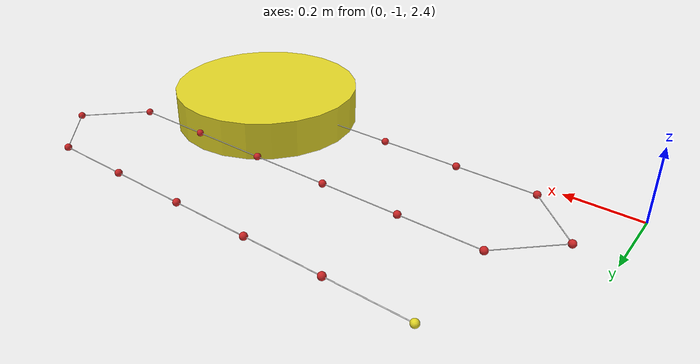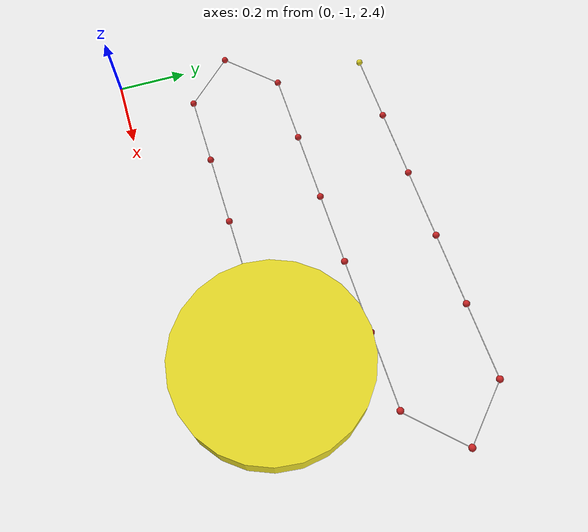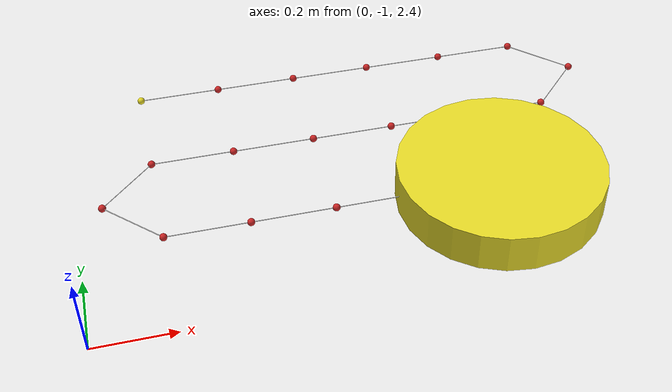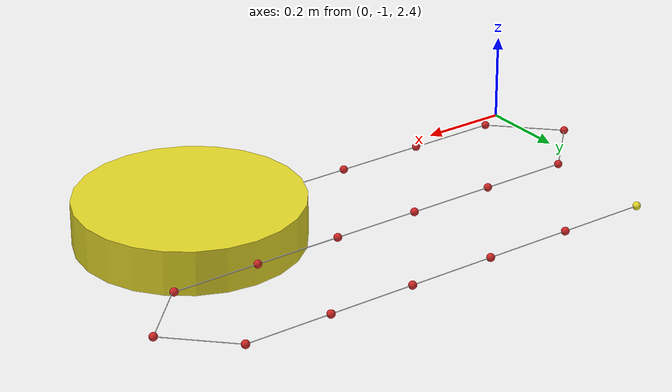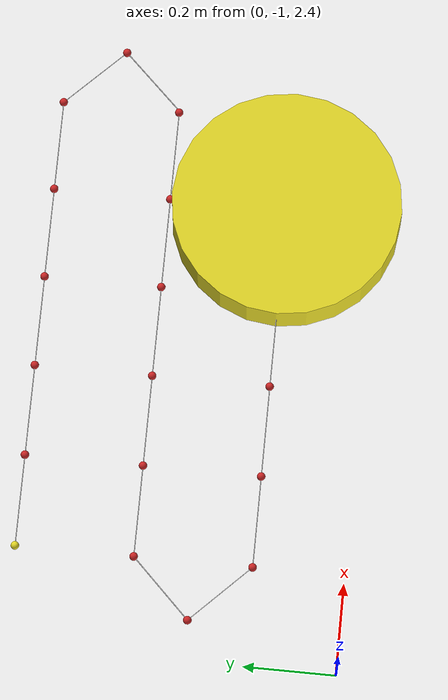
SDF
<sdf version="1.7">
 <world name="default">
  <light name="sun" type="directional">
   <pose>0 0 10 0 -0 0</pose>
   <diffuse>0.8 0.8 0.8 1</diffuse>
   <specular>0.2 0.2 0.2 1</specular>
   <attenuation>
    <range>1000</range>
    <constant>0.9</constant>
    <linear>0.01</linear>
    <quadratic>0.001</quadratic>
   </attenuation>
   <direction>-0.5 0.1 -0.9</direction>
   <spot><inner_angle>0</inner_angle><outer_angle>0</outer_angle><falloff>0</falloff></spot>
  </light>
  <model name="ground_plane">
   <static>1</static>
   <link name="link">
    <collision name="collision">
     <geometry><plane><normal>0 0 1</normal><size>100 100</size></plane></geometry>
     <surface><friction><ode><mu>100</mu><mu2>50</mu2></ode></friction></surface>
    </collision>
    <visual name="visual">
     <cast_shadows>0</cast_shadows>
     <geometry><plane><normal>0 0 1</normal><size>100 100</size></plane></geometry>
     <material>
      <script><uri>file://media/materials/scripts/gazebo.material</uri><name>Gazebo/Grey</name></script>
     </material>
    </visual>
   </link>
  </model>
  <gravity>0 0 -9.8</gravity>
  <magnetic_field>6e-06 2.3e-05 -4.2e-05</magnetic_field>
  <atmosphere type="adiabatic"/>
  <physics type="ode">
   <max_step_size>0.001</max_step_size>
   <real_time_factor>1</real_time_factor>
   <real_time_update_rate>1000</real_time_update_rate>
  </physics>
  <scene><ambient>0.4 0.4 0.4 1</ambient><background>0.7 0.7 0.7 1</background><shadows>1</shadows></scene>
  <spherical_coordinates>
   <surface_model>EARTH_WGS84</surface_model>
   <latitude_deg>0</latitude_deg>
   <longitude_deg>0</longitude_deg>
   <elevation>0</elevation>
   <heading_deg>0</heading_deg>
  </spherical_coordinates>
  <model name="table_and_tether">
   <link name="tether_connection_link">
    <gravity>0</gravity>
    <pose>0.9 -0.508 2.5 0 -0 0</pose>
    <visual name="visual">
     <material>
      <script><name>Gazebo/Yellow</name><uri>file://media/materials/scripts/gazebo.material</uri></script>
     </material>
     <geometry><cylinder><radius>0.25</radius><length>0.1</length></cylinder></geometry>
    </visual>
    <inertial>
     <inertia><ixx>1</ixx><ixy>0</ixy><ixz>0</ixz><iyy>1</iyy><iyz>0</iyz><izz>1</izz></inertia>
     <mass>1</mass>
    </inertial>
   </link>
   <joint name="joint_table" type="fixed"><child>tether_connection_link</child><parent>world</parent></joint>
   <link name="link_00">
    <pose>0.1 0 2.5 0 -0 0</pose>
    <inertial>
     <mass>0.009</mass>
     <pose>0.1 0 0 0 -0 0</pose>
     <inertia><ixx>0.01</ixx><ixy>0</ixy><ixz>0</ixz><iyy>0.01</iyy><iyz>0</iyz><izz>0.01</izz></inertia>
    </inertial>
    <visual name="sphere">
     <geometry><sphere><radius>0.009</radius></sphere></geometry>
     <material>
      <script><name>Gazebo/Yellow</name><uri>file://media/materials/scripts/gazebo.material</uri></script>
     </material>
    </visual>
   </link>
   <link name="link_01">
    <pose>0.1 0 2.5 0 -0 0</pose>
    <inertial>
     <mass>0.009</mass>
     <pose>0.1 0 0 0 -0 0</pose>
     <inertia><ixx>0.01</ixx><ixy>0</ixy><ixz>0</ixz><iyy>0.01</iyy><iyz>0</iyz><izz>0.01</izz></inertia>
    </inertial>
    <collision name="collision">
     <pose>0.1 0 0 0 1.57079 0</pose>
     <geometry><cylinder><length>0.2</length><radius>0.001</radius></cylinder></geometry>
     <surface>
      <contact><ode><min_depth>5e-05</min_depth></ode></contact>
      <friction><ode><mu>1</mu><mu2>1</mu2></ode></friction>
     </surface>
    </collision>
    <visual name="visual">
     <pose>0.1 0 0 0 1.57079 0</pose>
     <geometry><cylinder><length>0.2</length><radius>0.001</radius></cylinder></geometry>
     <material>
      <script><name>Gazebo/White</name><uri>file://media/materials/scripts/gazebo.material</uri></script>
     </material>
    </visual>
   </link>
   <link name="link_02">
    <pose>0.3 0 2.5 0 -0 0</pose>
    <inertial>
     <mass>0.009</mass>
     <pose>0.1 0 0 0 -0 0</pose>
     <inertia><ixx>0.01</ixx><ixy>0</ixy><ixz>0</ixz><iyy>0.01</iyy><iyz>0</iyz><izz>0.01</izz></inertia>
    </inertial>
    <collision name="collision">
     <pose>0.1 0 0 0 1.57079 0</pose>
     <geometry><cylinder><length>0.2</length><radius>0.001</radius></cylinder></geometry>
     <surface>
      <contact><ode><min_depth>5e-05</min_depth></ode></contact>
      <friction><ode><mu>1</mu><mu2>1</mu2></ode></friction>
     </surface>
    </collision>
    <visual name="visual">
     <pose>0.1 0 0 0 1.57079 0</pose>
     <geometry><cylinder><length>0.2</length><radius>0.001</radius></cylinder></geometry>
     <material>
      <script><name>Gazebo/White</name><uri>file://media/materials/scripts/gazebo.material</uri></script>
     </material>
    </visual>
    <visual name="sphere">
     <geometry><sphere><radius>0.009</radius></sphere></geometry>
     <material>
      <script><name>Gazebo/Red</name><uri>file://media/materials/scripts/gazebo.material</uri></script>
     </material>
    </visual>
   </link>
   <link name="link_03">
    <pose>0.5 0 2.5 0 -0 0</pose>
    <inertial>
     <mass>0.009</mass>
     <pose>0.1 0 0 0 -0 0</pose>
     <inertia><ixx>0.01</ixx><ixy>0</ixy><ixz>0</ixz><iyy>0.01</iyy><iyz>0</iyz><izz>0.01</izz></inertia>
    </inertial>
    <collision name="collision">
     <pose>0.1 0 0 0 1.57079 0</pose>
     <geometry><cylinder><length>0.2</length><radius>0.001</radius></cylinder></geometry>
     <surface>
      <contact><ode><min_depth>5e-05</min_depth></ode></contact>
      <friction><ode><mu>1</mu><mu2>1</mu2></ode></friction>
     </surface>
    </collision>
    <visual name="visual">
     <pose>0.1 0 0 0 1.57079 0</pose>
     <geometry><cylinder><length>0.2</length><radius>0.001</radius></cylinder></geometry>
     <material>
      <script><name>Gazebo/White</name><uri>file://media/materials/scripts/gazebo.material</uri></script>
     </material>
    </visual>
    <visual name="sphere">
     <geometry><sphere><radius>0.009</radius></sphere></geometry>
     <material>
      <script><name>Gazebo/Red</name><uri>file://media/materials/scripts/gazebo.material</uri></script>
     </material>
    </visual>
   </link>
   <link name="link_04">
    <pose>0.7 0 2.5 0 -0 0</pose>
    <inertial>
     <mass>0.009</mass>
     <pose>0.1 0 0 0 -0 0</pose>
     <inertia><ixx>0.01</ixx><ixy>0</ixy><ixz>0</ixz><iyy>0.01</iyy><iyz>0</iyz><izz>0.01</izz></inertia>
    </inertial>
    <collision name="collision">
     <pose>0.1 0 0 0 1.57079 0</pose>
     <geometry><cylinder><length>0.2</length><radius>0.001</radius></cylinder></geometry>
     <surface>
      <contact><ode><min_depth>5e-05</min_depth></ode></contact>
      <friction><ode><mu>1</mu><mu2>1</mu2></ode></friction>
     </surface>
    </collision>
    <visual name="visual">
     <pose>0.1 0 0 0 1.57079 0</pose>
     <geometry><cylinder><length>0.2</length><radius>0.001</radius></cylinder></geometry>
     <material>
      <script><name>Gazebo/White</name><uri>file://media/materials/scripts/gazebo.material</uri></script>
     </material>
    </visual>
    <visual name="sphere">
     <geometry><sphere><radius>0.009</radius></sphere></geometry>
     <material>
      <script><name>Gazebo/Red</name><uri>file://media/materials/scripts/gazebo.material</uri></script>
     </material>
    </visual>
   </link>
   <link name="link_05">
    <pose>0.9 0 2.5 0 -0 0</pose>
    <inertial>
     <mass>0.009</mass>
     <pose>0.1 0 0 0 -0 0</pose>
     <inertia><ixx>0.01</ixx><ixy>0</ixy><ixz>0</ixz><iyy>0.01</iyy><iyz>0</iyz><izz>0.01</izz></inertia>
    </inertial>
    <collision name="collision">
     <pose>0.1 0 0 0 1.57079 0</pose>
     <geometry><cylinder><length>0.2</length><radius>0.001</radius></cylinder></geometry>
     <surface>
      <contact><ode><min_depth>5e-05</min_depth></ode></contact>
      <friction><ode><mu>1</mu><mu2>1</mu2></ode></friction>
     </surface>
    </collision>
    <visual name="visual">
     <pose>0.1 0 0 0 1.57079 0</pose>
     <geometry><cylinder><length>0.2</length><radius>0.001</radius></cylinder></geometry>
     <material>
      <script><name>Gazebo/White</name><uri>file://media/materials/scripts/gazebo.material</uri></script>
     </material>
    </visual>
    <visual name="sphere">
     <geometry><sphere><radius>0.009</radius></sphere></geometry>
     <material>
      <script><name>Gazebo/Red</name><uri>file://media/materials/scripts/gazebo.material</uri></script>
     </material>
    </visual>
   </link>
   <link name="link_06">
    <pose>1.1 0 2.5 0 0 -0.785</pose>
    <inertial>
     <mass>0.009</mass>
     <pose>0.0875 0 0 0 -0 0</pose>
     <inertia><ixx>0.01</ixx><ixy>0</ixy><ixz>0</ixz><iyy>0.01</iyy><iyz>0</iyz><izz>0.01</izz></inertia>
    </inertial>
    <collision name="collision">
     <pose>0.0875 0 0 0 1.57079 0</pose>
     <geometry><cylinder><length>0.175</length><radius>0.001</radius></cylinder></geometry>
     <surface>
      <contact><ode><min_depth>5e-05</min_depth></ode></contact>
      <friction><ode><mu>1</mu><mu2>1</mu2></ode></friction>
     </surface>
    </collision>
    <visual name="visual">
     <pose>0.0875 0 0 0 1.57079 0</pose>
     <geometry><cylinder><length>0.175</length><radius>0.001</radius></cylinder></geometry>
     <material>
      <script><name>Gazebo/White</name><uri>file://media/materials/scripts/gazebo.material</uri></script>
     </material>
    </visual>
    <visual name="sphere">
     <geometry><sphere><radius>0.009</radius></sphere></geometry>
     <material>
      <script><name>Gazebo/Red</name><uri>file://media/materials/scripts/gazebo.material</uri></script>
     </material>
    </visual>
   </link>
   <link name="link_07">
    <pose>1.227 -0.127 2.5 0 0 -2.3415</pose>
    <inertial>
     <mass>0.009</mass>
     <pose>0.0875 0 0 0 -0 0</pose>
     <inertia><ixx>0.01</ixx><ixy>0</ixy><ixz>0</ixz><iyy>0.01</iyy><iyz>0</iyz><izz>0.01</izz></inertia>
    </inertial>
    <collision name="collision">
     <pose>0.0875 0 0 0 1.57079 0</pose>
     <geometry><cylinder><length>0.175</length><radius>0.001</radius></cylinder></geometry>
     <surface>
      <contact><ode><min_depth>5e-05</min_depth></ode></contact>
      <friction><ode><mu>1</mu><mu2>1</mu2></ode></friction>
     </surface>
    </collision>
    <visual name="visual">
     <pose>0.0875 0 0 0 1.57079 0</pose>
     <geometry><cylinder><length>0.175</length><radius>0.001</radius></cylinder></geometry>
     <material>
      <script><name>Gazebo/White</name><uri>file://media/materials/scripts/gazebo.material</uri></script>
     </material>
    </visual>
    <visual name="sphere">
     <geometry><sphere><radius>0.009</radius></sphere></geometry>
     <material>
      <script><name>Gazebo/Red</name><uri>file://media/materials/scripts/gazebo.material</uri></script>
     </material>
    </visual>
   </link>
   <link name="link_08">
    <pose>1.1 -0.254 2.5 0 0 -3.1415</pose>
    <inertial>
     <mass>0.009</mass>
     <pose>0.1 0 0 0 -0 0</pose>
     <inertia><ixx>0.01</ixx><ixy>0</ixy><ixz>0</ixz><iyy>0.01</iyy><iyz>0</iyz><izz>0.01</izz></inertia>
    </inertial>
    <collision name="collision">
     <pose>0.1 0 0 0 1.57079 0</pose>
     <geometry><cylinder><length>0.2</length><radius>0.001</radius></cylinder></geometry>
     <surface>
      <contact><ode><min_depth>5e-05</min_depth></ode></contact>
      <friction><ode><mu>1</mu><mu2>1</mu2></ode></friction>
     </surface>
    </collision>
    <visual name="visual">
     <pose>0.1 0 0 0 1.57079 0</pose>
     <geometry><cylinder><length>0.2</length><radius>0.001</radius></cylinder></geometry>
     <material>
      <script><name>Gazebo/White</name><uri>file://media/materials/scripts/gazebo.material</uri></script>
     </material>
    </visual>
    <visual name="sphere">
     <geometry><sphere><radius>0.009</radius></sphere></geometry>
     <material>
      <script><name>Gazebo/Red</name><uri>file://media/materials/scripts/gazebo.material</uri></script>
     </material>
    </visual>
   </link>
   <link name="link_09">
    <pose>0.9 -0.254 2.5 0 0 -3.1415</pose>
    <inertial>
     <mass>0.009</mass>
     <pose>0.1 0 0 0 -0 0</pose>
     <inertia><ixx>0.01</ixx><ixy>0</ixy><ixz>0</ixz><iyy>0.01</iyy><iyz>0</iyz><izz>0.01</izz></inertia>
    </inertial>
    <collision name="collision">
     <pose>0.1 0 0 0 1.57079 0</pose>
     <geometry><cylinder><length>0.2</length><radius>0.001</radius></cylinder></geometry>
     <surface>
      <contact><ode><min_depth>5e-05</min_depth></ode></contact>
      <friction><ode><mu>1</mu><mu2>1</mu2></ode></friction>
     </surface>
    </collision>
    <visual name="visual">
     <pose>0.1 0 0 0 1.57079 0</pose>
     <geometry><cylinder><length>0.2</length><radius>0.001</radius></cylinder></geometry>
     <material>
      <script><name>Gazebo/White</name><uri>file://media/materials/scripts/gazebo.material</uri></script>
     </material>
    </visual>
    <visual name="sphere">
     <geometry><sphere><radius>0.009</radius></sphere></geometry>
     <material>
      <script><name>Gazebo/Red</name><uri>file://media/materials/scripts/gazebo.material</uri></script>
     </material>
    </visual>
   </link>
   <link name="link_10">
    <pose>0.7 -0.254 2.5 0 0 -3.1415</pose>
    <inertial>
     <mass>0.009</mass>
     <pose>0.1 0 0 0 -0 0</pose>
     <inertia><ixx>0.01</ixx><ixy>0</ixy><ixz>0</ixz><iyy>0.01</iyy><iyz>0</iyz><izz>0.01</izz></inertia>
    </inertial>
    <collision name="collision">
     <pose>0.1 0 0 0 1.57079 0</pose>
     <geometry><cylinder><length>0.2</length><radius>0.001</radius></cylinder></geometry>
     <surface>
      <contact><ode><min_depth>5e-05</min_depth></ode></contact>
      <friction><ode><mu>1</mu><mu2>1</mu2></ode></friction>
     </surface>
    </collision>
    <visual name="visual">
     <pose>0.1 0 0 0 1.57079 0</pose>
     <geometry><cylinder><length>0.2</length><radius>0.001</radius></cylinder></geometry>
     <material>
      <script><name>Gazebo/White</name><uri>file://media/materials/scripts/gazebo.material</uri></script>
     </material>
    </visual>
    <visual name="sphere">
     <geometry><sphere><radius>0.009</radius></sphere></geometry>
     <material>
      <script><name>Gazebo/Red</name><uri>file://media/materials/scripts/gazebo.material</uri></script>
     </material>
    </visual>
   </link>
   <link name="link_11">
    <pose>0.5 -0.254 2.5 0 0 -3.1415</pose>
    <inertial>
     <mass>0.009</mass>
     <pose>0.1 0 0 0 -0 0</pose>
     <inertia><ixx>0.01</ixx><ixy>0</ixy><ixz>0</ixz><iyy>0.01</iyy><iyz>0</iyz><izz>0.01</izz></inertia>
    </inertial>
    <collision name="collision">
     <pose>0.1 0 0 0 1.57079 0</pose>
     <geometry><cylinder><length>0.2</length><radius>0.001</radius></cylinder></geometry>
     <surface>
      <contact><ode><min_depth>5e-05</min_depth></ode></contact>
      <friction><ode><mu>1</mu><mu2>1</mu2></ode></friction>
     </surface>
    </collision>
    <visual name="visual">
     <pose>0.1 0 0 0 1.57079 0</pose>
     <geometry><cylinder><length>0.2</length><radius>0.001</radius></cylinder></geometry>
     <material>
      <script><name>Gazebo/White</name><uri>file://media/materials/scripts/gazebo.material</uri></script>
     </material>
    </visual>
    <visual name="sphere">
     <geometry><sphere><radius>0.009</radius></sphere></geometry>
     <material>
      <script><name>Gazebo/Red</name><uri>file://media/materials/scripts/gazebo.material</uri></script>
     </material>
    </visual>
   </link>
   <link name="link_12">
    <pose>0.3 -0.254 2.5 0 0 -3.1415</pose>
    <inertial>
     <mass>0.009</mass>
     <pose>0.1 0 0 0 -0 0</pose>
     <inertia><ixx>0.01</ixx><ixy>0</ixy><ixz>0</ixz><iyy>0.01</iyy><iyz>0</iyz><izz>0.01</izz></inertia>
    </inertial>
    <collision name="collision">
     <pose>0.1 0 0 0 1.57079 0</pose>
     <geometry><cylinder><length>0.2</length><radius>0.001</radius></cylinder></geometry>
     <surface>
      <contact><ode><min_depth>5e-05</min_depth></ode></contact>
      <friction><ode><mu>1</mu><mu2>1</mu2></ode></friction>
     </surface>
    </collision>
    <visual name="visual">
     <pose>0.1 0 0 0 1.57079 0</pose>
     <geometry><cylinder><length>0.2</length><radius>0.001</radius></cylinder></geometry>
     <material>
      <script><name>Gazebo/White</name><uri>file://media/materials/scripts/gazebo.material</uri></script>
     </material>
    </visual>
    <visual name="sphere">
     <geometry><sphere><radius>0.009</radius></sphere></geometry>
     <material>
      <script><name>Gazebo/Red</name><uri>file://media/materials/scripts/gazebo.material</uri></script>
     </material>
    </visual>
   </link>
   <link name="link_13">
    <pose>0.1 -0.254 2.5 0 0 -2.356</pose>
    <inertial>
     <mass>0.009</mass>
     <pose>0.0875 0 0 0 -0 0</pose>
     <inertia><ixx>0.01</ixx><ixy>0</ixy><ixz>0</ixz><iyy>0.01</iyy><iyz>0</iyz><izz>0.01</izz></inertia>
    </inertial>
    <collision name="collision">
     <pose>0.0875 0 0 0 1.57079 0</pose>
     <geometry><cylinder><length>0.175</length><radius>0.001</radius></cylinder></geometry>
     <surface>
      <contact><ode><min_depth>5e-05</min_depth></ode></contact>
      <friction><ode><mu>1</mu><mu2>1</mu2></ode></friction>
     </surface>
    </collision>
    <visual name="visual">
     <pose>0.0875 0 0 0 1.57079 0</pose>
     <geometry><cylinder><length>0.175</length><radius>0.001</radius></cylinder></geometry>
     <material>
      <script><name>Gazebo/White</name><uri>file://media/materials/scripts/gazebo.material</uri></script>
     </material>
    </visual>
    <visual name="sphere">
     <geometry><sphere><radius>0.009</radius></sphere></geometry>
     <material>
      <script><name>Gazebo/Red</name><uri>file://media/materials/scripts/gazebo.material</uri></script>
     </material>
    </visual>
   </link>
   <link name="link_14">
    <pose>-0.027 -0.381 2.5 0 0 -0.785</pose>
    <inertial>
     <mass>0.009</mass>
     <pose>0.0875 0 0 0 -0 0</pose>
     <inertia><ixx>0.01</ixx><ixy>0</ixy><ixz>0</ixz><iyy>0.01</iyy><iyz>0</iyz><izz>0.01</izz></inertia>
    </inertial>
    <collision name="collision">
     <pose>0.0875 0 0 0 1.57079 0</pose>
     <geometry><cylinder><length>0.175</length><radius>0.001</radius></cylinder></geometry>
     <surface>
      <contact><ode><min_depth>5e-05</min_depth></ode></contact>
      <friction><ode><mu>1</mu><mu2>1</mu2></ode></friction>
     </surface>
    </collision>
    <visual name="visual">
     <pose>0.0875 0 0 0 1.57079 0</pose>
     <geometry><cylinder><length>0.175</length><radius>0.001</radius></cylinder></geometry>
     <material>
      <script><name>Gazebo/White</name><uri>file://media/materials/scripts/gazebo.material</uri></script>
     </material>
    </visual>
    <visual name="sphere">
     <geometry><sphere><radius>0.009</radius></sphere></geometry>
     <material>
      <script><name>Gazebo/Red</name><uri>file://media/materials/scripts/gazebo.material</uri></script>
     </material>
    </visual>
   </link>
   <link name="link_15">
    <pose>0.1 -0.508 2.5 0 -0 0</pose>
    <inertial>
     <mass>0.009</mass>
     <pose>0.1 0 0 0 -0 0</pose>
     <inertia><ixx>0.01</ixx><ixy>0</ixy><ixz>0</ixz><iyy>0.01</iyy><iyz>0</iyz><izz>0.01</izz></inertia>
    </inertial>
    <collision name="collision">
     <pose>0.1 0 0 0 1.57079 0</pose>
     <geometry><cylinder><length>0.2</length><radius>0.001</radius></cylinder></geometry>
     <surface>
      <contact><ode><min_depth>5e-05</min_depth></ode></contact>
      <friction><ode><mu>1</mu><mu2>1</mu2></ode></friction>
     </surface>
    </collision>
    <visual name="visual">
     <pose>0.1 0 0 0 1.57079 0</pose>
     <geometry><cylinder><length>0.2</length><radius>0.001</radius></cylinder></geometry>
     <material>
      <script><name>Gazebo/White</name><uri>file://media/materials/scripts/gazebo.material</uri></script>
     </material>
    </visual>
    <visual name="sphere">
     <geometry><sphere><radius>0.009</radius></sphere></geometry>
     <material>
      <script><name>Gazebo/Red</name><uri>file://media/materials/scripts/gazebo.material</uri></script>
     </material>
    </visual>
   </link>
   <link name="link_16">
    <pose>0.3 -0.508 2.5 0 -0 0</pose>
    <inertial>
     <mass>0.009</mass>
     <pose>0.1 0 0 0 -0 0</pose>
     <inertia><ixx>0.01</ixx><ixy>0</ixy><ixz>0</ixz><iyy>0.01</iyy><iyz>0</iyz><izz>0.01</izz></inertia>
    </inertial>
    <collision name="collision">
     <pose>0.1 0 0 0 1.57079 0</pose>
     <geometry><cylinder><length>0.2</length><radius>0.001</radius></cylinder></geometry>
     <surface>
      <contact><ode><min_depth>5e-05</min_depth></ode></contact>
      <friction><ode><mu>1</mu><mu2>1</mu2></ode></friction>
     </surface>
    </collision>
    <visual name="visual">
     <pose>0.1 0 0 0 1.57079 0</pose>
     <geometry><cylinder><length>0.2</length><radius>0.001</radius></cylinder></geometry>
     <material>
      <script><name>Gazebo/White</name><uri>file://media/materials/scripts/gazebo.material</uri></script>
     </material>
    </visual>
    <visual name="sphere">
     <geometry><sphere><radius>0.009</radius></sphere></geometry>
     <material>
      <script><name>Gazebo/Red</name><uri>file://media/materials/scripts/gazebo.material</uri></script>
     </material>
    </visual>
   </link>
   <link name="link_17">
    <pose>0.5 -0.508 2.5 0 -0 0</pose>
    <inertial>
     <mass>0.009</mass>
     <pose>0.1 0 0 0 -0 0</pose>
     <inertia><ixx>0.01</ixx><ixy>0</ixy><ixz>0</ixz><iyy>0.01</iyy><iyz>0</iyz><izz>0.01</izz></inertia>
    </inertial>
    <collision name="collision">
     <pose>0.1 0 0 0 1.57079 0</pose>
     <geometry><cylinder><length>0.2</length><radius>0.001</radius></cylinder></geometry>
     <surface>
      <contact><ode><min_depth>5e-05</min_depth></ode></contact>
      <friction><ode><mu>1</mu><mu2>1</mu2></ode></friction>
     </surface>
    </collision>
    <visual name="visual">
     <pose>0.1 0 0 0 1.57079 0</pose>
     <geometry><cylinder><length>0.2</length><radius>0.001</radius></cylinder></geometry>
     <material>
      <script><name>Gazebo/White</name><uri>file://media/materials/scripts/gazebo.material</uri></script>
     </material>
    </visual>
    <visual name="sphere">
     <geometry><sphere><radius>0.009</radius></sphere></geometry>
     <material>
      <script><name>Gazebo/Red</name><uri>file://media/materials/scripts/gazebo.material</uri></script>
     </material>
    </visual>
   </link>
   <link name="link_18">
    <pose>0.7 -0.508 2.5 0 -0 0</pose>
    <inertial>
     <mass>0.009</mass>
     <pose>0.1 0 0 0 -0 0</pose>
     <inertia><ixx>0.01</ixx><ixy>0</ixy><ixz>0</ixz><iyy>0.01</iyy><iyz>0</iyz><izz>0.01</izz></inertia>
    </inertial>
    <collision name="collision">
     <pose>0.1 0 0 0 1.57079 0</pose>
     <geometry><cylinder><length>0.2</length><radius>0.001</radius></cylinder></geometry>
     <surface>
      <contact><ode><min_depth>5e-05</min_depth></ode></contact>
      <friction><ode><mu>1</mu><mu2>1</mu2></ode></friction>
     </surface>
    </collision>
    <visual name="visual">
     <pose>0.1 0 0 0 1.57079 0</pose>
     <geometry><cylinder><length>0.2</length><radius>0.001</radius></cylinder></geometry>
     <material>
      <script><name>Gazebo/White</name><uri>file://media/materials/scripts/gazebo.material</uri></script>
     </material>
    </visual>
    <visual name="sphere">
     <geometry><sphere><radius>0.009</radius></sphere></geometry>
     <material>
      <script><name>Gazebo/Red</name><uri>file://media/materials/scripts/gazebo.material</uri></script>
     </material>
    </visual>
   </link>
   <link name="link_19">
    <pose>0.9 -0.508 2.5 0 -0 0</pose>
    <inertial>
     <mass>0.009</mass>
     <pose>0.1 0 0 0 -0 0</pose>
     <inertia><ixx>0.01</ixx><ixy>0</ixy><ixz>0</ixz><iyy>0.01</iyy><iyz>0</iyz><izz>0.01</izz></inertia>
    </inertial>
    <collision name="collision">
     <pose>0.1 0 0 0 1.57079 0</pose>
     <geometry><cylinder><length>0.2</length><radius>0.001</radius></cylinder></geometry>
     <surface>
      <contact><ode><min_depth>5e-05</min_depth></ode></contact>
      <friction><ode><mu>1</mu><mu2>1</mu2></ode></friction>
     </surface>
    </collision>
    <visual name="sphere">
     <geometry><sphere><radius>0.009</radius></sphere></geometry>
     <material>
      <script><name>Gazebo/Red</name><uri>file://media/materials/scripts/gazebo.material</uri></script>
     </material>
    </visual>
   </link>
   <joint name="joint_01" type="universal">
    <child>link_01</child>
    <parent>link_00</parent>
    <axis>
     <xyz expressed_in="__model__">0 1 0</xyz>
     <limit><lower>-1.57</lower><upper>1.57</upper></limit>
     <dynamics>
      <damping>0.1</damping>
      <friction>0</friction>
      <spring_stiffness>0.05</spring_stiffness>
      <spring_reference>0</spring_reference>
     </dynamics>
    </axis>
    <axis2>
     <xyz expressed_in="__model__">0 0 1</xyz>
     <limit><lower>-1.57</lower><upper>1.57</upper></limit>
     <dynamics>
      <damping>0.1</damping>
      <friction>0</friction>
      <spring_stiffness>0.05</spring_stiffness>
      <spring_reference>0</spring_reference>
     </dynamics>
    </axis2>
    <physics><ode><cfm_damping>1</cfm_damping><limit><cfm>0</cfm><erp>0.2</erp></limit></ode></physics>
   </joint>
   <joint name="joint_02" type="universal">
    <child>link_02</child>
    <parent>link_01</parent>
    <axis>
     <xyz expressed_in="__model__">0 1 0</xyz>
     <limit><lower>-1.57</lower><upper>1.57</upper></limit>
     <dynamics>
      <damping>0.1</damping>
      <friction>0</friction>
      <spring_stiffness>0.05</spring_stiffness>
      <spring_reference>0</spring_reference>
     </dynamics>
    </axis>
    <axis2>
     <xyz expressed_in="__model__">0 0 1</xyz>
     <limit><lower>-1.57</lower><upper>1.57</upper></limit>
     <dynamics>
      <damping>0.1</damping>
      <friction>0</friction>
      <spring_stiffness>0.05</spring_stiffness>
      <spring_reference>0</spring_reference>
     </dynamics>
    </axis2>
    <physics><ode><cfm_damping>1</cfm_damping><limit><cfm>0</cfm><erp>0.2</erp></limit></ode></physics>
   </joint>
   <joint name="joint_03" type="universal">
    <child>link_03</child>
    <parent>link_02</parent>
    <axis>
     <xyz expressed_in="__model__">0 1 0</xyz>
     <limit><lower>-1.57</lower><upper>1.57</upper></limit>
     <dynamics>
      <damping>0.1</damping>
      <friction>0</friction>
      <spring_stiffness>0.05</spring_stiffness>
      <spring_reference>0</spring_reference>
     </dynamics>
    </axis>
    <axis2>
     <xyz expressed_in="__model__">0 0 1</xyz>
     <limit><lower>-1.57</lower><upper>1.57</upper></limit>
     <dynamics>
      <damping>0.1</damping>
      <friction>0</friction>
      <spring_stiffness>0.05</spring_stiffness>
      <spring_reference>0</spring_reference>
     </dynamics>
    </axis2>
    <physics><ode><cfm_damping>1</cfm_damping><limit><cfm>0</cfm><erp>0.2</erp></limit></ode></physics>
   </joint>
   <joint name="joint_04" type="universal">
    <child>link_04</child>
    <parent>link_03</parent>
    <axis>
     <xyz expressed_in="__model__">0 1 0</xyz>
     <limit><lower>-1.57</lower><upper>1.57</upper></limit>
     <dynamics>
      <damping>0.1</damping>
      <friction>0</friction>
      <spring_stiffness>0.05</spring_stiffness>
      <spring_reference>0</spring_reference>
     </dynamics>
    </axis>
    <axis2>
     <xyz expressed_in="__model__">0 0 1</xyz>
     <limit><lower>-1.57</lower><upper>1.57</upper></limit>
     <dynamics>
      <damping>0.1</damping>
      <friction>0</friction>
      <spring_stiffness>0.05</spring_stiffness>
      <spring_reference>0</spring_reference>
     </dynamics>
    </axis2>
    <physics><ode><cfm_damping>1</cfm_damping><limit><cfm>0</cfm><erp>0.2</erp></limit></ode></physics>
   </joint>
   <joint name="joint_05" type="universal">
    <child>link_05</child>
    <parent>link_04</parent>
    <axis>
     <xyz expressed_in="__model__">0 1 0</xyz>
     <limit><lower>-1.57</lower><upper>1.57</upper></limit>
     <dynamics>
      <damping>0.1</damping>
      <friction>0</friction>
      <spring_stiffness>0.05</spring_stiffness>
      <spring_reference>0</spring_reference>
     </dynamics>
    </axis>
    <axis2>
     <xyz expressed_in="__model__">0 0 1</xyz>
     <limit><lower>-1.57</lower><upper>1.57</upper></limit>
     <dynamics>
      <damping>0.1</damping>
      <friction>0</friction>
      <spring_stiffness>0.05</spring_stiffness>
      <spring_reference>0</spring_reference>
     </dynamics>
    </axis2>
    <physics><ode><cfm_damping>1</cfm_damping><limit><cfm>0</cfm><erp>0.2</erp></limit></ode></physics>
   </joint>
   <joint name="joint_06" type="universal">
    <child>link_06</child>
    <parent>link_05</parent>
    <axis>
     <xyz expressed_in="__model__">0 0 1</xyz>
     <limit><lower>-0.72</lower><upper>2.35</upper></limit>
     <dynamics>
      <damping>0.1</damping>
      <friction>0</friction>
      <spring_stiffness>0.05</spring_stiffness>
      <spring_reference>0</spring_reference>
     </dynamics>
    </axis>
    <axis2>
     <xyz expressed_in="__model__">1 1 0</xyz>
     <limit><lower>-1.57</lower><upper>1.57</upper></limit>
     <dynamics>
      <damping>0.1</damping>
      <friction>0</friction>
      <spring_stiffness>0.05</spring_stiffness>
      <spring_reference>0</spring_reference>
     </dynamics>
    </axis2>
    <physics><ode><cfm_damping>1</cfm_damping><limit><cfm>0</cfm><erp>0.2</erp></limit></ode></physics>
   </joint>
   <joint name="joint_07" type="universal">
    <child>link_07</child>
    <parent>link_06</parent>
    <axis>
     <xyz expressed_in="__model__">0 0 1</xyz>
     <limit><lower>-0</lower><upper>3</upper></limit>
     <dynamics>
      <damping>0.1</damping>
      <friction>0</friction>
      <spring_stiffness>0.05</spring_stiffness>
      <spring_reference>0</spring_reference>
     </dynamics>
    </axis>
    <axis2>
     <xyz expressed_in="__model__">-1 1 0</xyz>
     <limit><lower>-1.57</lower><upper>1.57</upper></limit>
     <dynamics>
      <damping>0.1</damping>
      <friction>0</friction>
      <spring_stiffness>0.05</spring_stiffness>
      <spring_reference>0</spring_reference>
     </dynamics>
    </axis2>
    <physics><ode><cfm_damping>1</cfm_damping><limit><cfm>0</cfm><erp>0.2</erp></limit></ode></physics>
   </joint>
   <joint name="joint_08" type="universal">
    <child>link_08</child>
    <parent>link_07</parent>
    <axis>
     <xyz expressed_in="__model__">0 1 0</xyz>
     <limit><lower>-1.57</lower><upper>1.57</upper></limit>
     <dynamics>
      <damping>0.1</damping>
      <friction>0</friction>
      <spring_stiffness>0.05</spring_stiffness>
      <spring_reference>0</spring_reference>
     </dynamics>
    </axis>
    <axis2>
     <xyz expressed_in="__model__">0 0 1</xyz>
     <limit><lower>-0.72</lower><upper>2.35</upper></limit>
     <dynamics>
      <damping>0.1</damping>
      <friction>0</friction>
      <spring_stiffness>0.05</spring_stiffness>
      <spring_reference>0</spring_reference>
     </dynamics>
    </axis2>
    <physics><ode><cfm_damping>1</cfm_damping><limit><cfm>0</cfm><erp>0.2</erp></limit></ode></physics>
   </joint>
   <joint name="joint_09" type="universal">
    <child>link_09</child>
    <parent>link_08</parent>
    <axis>
     <xyz expressed_in="__model__">0 1 0</xyz>
     <limit><lower>-1.57</lower><upper>1.57</upper></limit>
     <dynamics>
      <damping>0.1</damping>
      <friction>0</friction>
      <spring_stiffness>0.05</spring_stiffness>
      <spring_reference>0</spring_reference>
     </dynamics>
    </axis>
    <axis2>
     <xyz expressed_in="__model__">0 0 1</xyz>
     <limit><lower>-1.57</lower><upper>1.57</upper></limit>
     <dynamics>
      <damping>0.1</damping>
      <friction>0</friction>
      <spring_stiffness>0.05</spring_stiffness>
      <spring_reference>0</spring_reference>
     </dynamics>
    </axis2>
    <physics><ode><cfm_damping>1</cfm_damping><limit><cfm>0</cfm><erp>0.2</erp></limit></ode></physics>
   </joint>
   <joint name="joint_10" type="universal">
    <child>link_10</child>
    <parent>link_09</parent>
    <axis>
     <xyz expressed_in="__model__">0 1 0</xyz>
     <limit><lower>-1.57</lower><upper>1.57</upper></limit>
     <dynamics>
      <damping>0.1</damping>
      <friction>0</friction>
      <spring_stiffness>0.05</spring_stiffness>
      <spring_reference>0</spring_reference>
     </dynamics>
    </axis>
    <axis2>
     <xyz expressed_in="__model__">0 0 1</xyz>
     <limit><lower>-1.57</lower><upper>1.57</upper></limit>
     <dynamics>
      <damping>0.1</damping>
      <friction>0</friction>
      <spring_stiffness>0.05</spring_stiffness>
      <spring_reference>0</spring_reference>
     </dynamics>
    </axis2>
    <physics><ode><cfm_damping>1</cfm_damping><limit><cfm>0</cfm><erp>0.2</erp></limit></ode></physics>
   </joint>
   <joint name="joint_11" type="universal">
    <child>link_11</child>
    <parent>link_10</parent>
    <axis>
     <xyz expressed_in="__model__">0 1 0</xyz>
     <limit><lower>-1.57</lower><upper>1.57</upper></limit>
     <dynamics>
      <damping>0.1</damping>
      <friction>0</friction>
      <spring_stiffness>0.05</spring_stiffness>
      <spring_reference>0</spring_reference>
     </dynamics>
    </axis>
    <axis2>
     <xyz expressed_in="__model__">0 0 1</xyz>
     <limit><lower>-1.57</lower><upper>1.57</upper></limit>
     <dynamics>
      <damping>0.1</damping>
      <friction>0</friction>
      <spring_stiffness>0.05</spring_stiffness>
      <spring_reference>0</spring_reference>
     </dynamics>
    </axis2>
    <physics><ode><cfm_damping>1</cfm_damping><limit><cfm>0</cfm><erp>0.2</erp></limit></ode></physics>
   </joint>
   <joint name="joint_12" type="universal">
    <child>link_12</child>
    <parent>link_11</parent>
    <axis>
     <xyz expressed_in="__model__">0 1 0</xyz>
     <limit><lower>-1.57</lower><upper>1.57</upper></limit>
     <dynamics>
      <damping>0.1</damping>
      <friction>0</friction>
      <spring_stiffness>0.05</spring_stiffness>
      <spring_reference>0</spring_reference>
     </dynamics>
    </axis>
    <axis2>
     <xyz expressed_in="__model__">0 0 1</xyz>
     <limit><lower>-1.57</lower><upper>1.57</upper></limit>
     <dynamics>
      <damping>0.1</damping>
      <friction>0</friction>
      <spring_stiffness>0.05</spring_stiffness>
      <spring_reference>0</spring_reference>
     </dynamics>
    </axis2>
    <physics><ode><cfm_damping>1</cfm_damping><limit><cfm>0</cfm><erp>0.2</erp></limit></ode></physics>
   </joint>
   <joint name="joint_13" type="universal">
    <child>link_13</child>
    <parent>link_12</parent>
    <axis>
     <xyz expressed_in="__model__">0 0 1</xyz>
     <limit><lower>-2.35</lower><upper>0.72</upper></limit>
     <dynamics>
      <damping>0.1</damping>
      <friction>0</friction>
      <spring_stiffness>0.05</spring_stiffness>
      <spring_reference>0</spring_reference>
     </dynamics>
    </axis>
    <axis2>
     <xyz expressed_in="__model__">-1 1 0</xyz>
     <limit><lower>-1.57</lower><upper>1.57</upper></limit>
     <dynamics>
      <damping>0.1</damping>
      <friction>0</friction>
      <spring_stiffness>0.05</spring_stiffness>
      <spring_reference>0</spring_reference>
     </dynamics>
    </axis2>
    <physics><ode><cfm_damping>1</cfm_damping><limit><cfm>0</cfm><erp>0.2</erp></limit></ode></physics>
   </joint>
   <joint name="joint_14" type="universal">
    <child>link_14</child>
    <parent>link_13</parent>
    <axis>
     <xyz expressed_in="__model__">0 0 1</xyz>
     <limit><lower>-3</lower><upper>0</upper></limit>
     <dynamics>
      <damping>0.1</damping>
      <friction>0</friction>
      <spring_stiffness>0.05</spring_stiffness>
      <spring_reference>0</spring_reference>
     </dynamics>
    </axis>
    <axis2>
     <xyz expressed_in="__model__">1 1 0</xyz>
     <limit><lower>-1.57</lower><upper>1.57</upper></limit>
     <dynamics>
      <damping>0.1</damping>
      <friction>0</friction>
      <spring_stiffness>0.05</spring_stiffness>
      <spring_reference>0</spring_reference>
     </dynamics>
    </axis2>
    <physics><ode><cfm_damping>1</cfm_damping><limit><cfm>0</cfm><erp>0.2</erp></limit></ode></physics>
   </joint>
   <joint name="joint_15" type="universal">
    <child>link_15</child>
    <parent>link_14</parent>
    <axis>
     <xyz expressed_in="__model__">0 0 1</xyz>
     <limit><lower>-2.35</lower><upper>0.72</upper></limit>
     <dynamics>
      <damping>0.1</damping>
      <friction>0</friction>
      <spring_stiffness>0.05</spring_stiffness>
      <spring_reference>0</spring_reference>
     </dynamics>
    </axis>
    <axis2>
     <xyz expressed_in="__model__">0 1 0</xyz>
     <limit><lower>-1.57</lower><upper>1.57</upper></limit>
     <dynamics>
      <damping>0.1</damping>
      <friction>0</friction>
      <spring_stiffness>0.05</spring_stiffness>
      <spring_reference>0</spring_reference>
     </dynamics>
    </axis2>
    <physics><ode><cfm_damping>1</cfm_damping><limit><cfm>0</cfm><erp>0.2</erp></limit></ode></physics>
   </joint>
   <joint name="joint_16" type="universal">
    <child>link_16</child>
    <parent>link_15</parent>
    <axis>
     <xyz expressed_in="__model__">0 1 0</xyz>
     <limit><lower>-1.57</lower><upper>1.57</upper></limit>
     <dynamics>
      <damping>0.1</damping>
      <friction>0</friction>
      <spring_stiffness>0.05</spring_stiffness>
      <spring_reference>0</spring_reference>
     </dynamics>
    </axis>
    <axis2>
     <xyz expressed_in="__model__">0 0 1</xyz>
     <limit><lower>-1.57</lower><upper>1.57</upper></limit>
     <dynamics>
      <damping>0.1</damping>
      <friction>0</friction>
      <spring_stiffness>0.05</spring_stiffness>
      <spring_reference>0</spring_reference>
     </dynamics>
    </axis2>
    <physics><ode><cfm_damping>1</cfm_damping><limit><cfm>0</cfm><erp>0.2</erp></limit></ode></physics>
   </joint>
   <joint name="joint_17" type="universal">
    <child>link_17</child>
    <parent>link_16</parent>
    <axis>
     <xyz expressed_in="__model__">0 1 0</xyz>
     <limit><lower>-1.57</lower><upper>1.57</upper></limit>
     <dynamics>
      <damping>0.1</damping>
      <friction>0</friction>
      <spring_stiffness>0.05</spring_stiffness>
      <spring_reference>0</spring_reference>
     </dynamics>
    </axis>
    <axis2>
     <xyz expressed_in="__model__">0 0 1</xyz>
     <limit><lower>-1.57</lower><upper>1.57</upper></limit>
     <dynamics>
      <damping>0.1</damping>
      <friction>0</friction>
      <spring_stiffness>0.05</spring_stiffness>
      <spring_reference>0</spring_reference>
     </dynamics>
    </axis2>
    <physics><ode><cfm_damping>1</cfm_damping><limit><cfm>0</cfm><erp>0.2</erp></limit></ode></physics>
   </joint>
   <joint name="joint_18" type="universal">
    <child>link_18</child>
    <parent>link_17</parent>
    <axis>
     <xyz expressed_in="__model__">0 1 0</xyz>
     <limit><lower>-1.57</lower><upper>1.57</upper></limit>
     <dynamics>
      <damping>0.1</damping>
      <friction>0</friction>
      <spring_stiffness>0.05</spring_stiffness>
      <spring_reference>0</spring_reference>
     </dynamics>
    </axis>
    <axis2>
     <xyz expressed_in="__model__">0 0 1</xyz>
     <limit><lower>-1.57</lower><upper>1.57</upper></limit>
     <dynamics>
      <damping>0.1</damping>
      <friction>0</friction>
      <spring_stiffness>0.05</spring_stiffness>
      <spring_reference>0</spring_reference>
     </dynamics>
    </axis2>
    <physics><ode><cfm_damping>1</cfm_damping><limit><cfm>0</cfm><erp>0.2</erp></limit></ode></physics>
   </joint>
   <joint name="joint_19" type="universal">
    <child>link_19</child>
    <parent>link_18</parent>
    <axis>
     <xyz expressed_in="__model__">0 1 0</xyz>
     <limit><lower>-1.57</lower><upper>1.57</upper></limit>
     <dynamics>
      <damping>0.1</damping>
      <friction>0</friction>
      <spring_stiffness>0.05</spring_stiffness>
      <spring_reference>0</spring_reference>
     </dynamics>
    </axis>
    <axis2>
     <xyz expressed_in="__model__">0 0 1</xyz>
     <limit><lower>-1.57</lower><upper>1.57</upper></limit>
     <dynamics>
      <damping>0.1</damping>
      <friction>0</friction>
      <spring_stiffness>0.05</spring_stiffness>
      <spring_reference>0</spring_reference>
     </dynamics>
    </axis2>
    <physics><ode><cfm_damping>1</cfm_damping><limit><cfm>0</cfm><erp>0.2</erp></limit></ode></physics>
   </joint>
   <joint name="fixed_to_world" type="fixed">
    <child>link_19</child>
    <parent>tether_connection_link</parent>
   </joint>
   <plugin name="link00_drag" filename="libLiftDragPlugin.so">
    <a0>0</a0>
    <cla>0</cla>
    <cda>1.2535816618911175</cda>
    <alpha_stall>0</alpha_stall>
    <cda_stall>1.4326647564469914</cda_stall>
    <cp>0 0 0</cp>
    <area>0.0004</area>
    <air_density>1.2041</air_density>
    <forward>0 1 0</forward>
    <upward>0 0 1</upward>
    <link_name>link_00</link_name>
   </plugin>
   <plugin name="link01_drag" filename="libLiftDragPlugin.so">
    <a0>0</a0>
    <cla>0</cla>
    <cda>1.2535816618911175</cda>
    <alpha_stall>0</alpha_stall>
    <cda_stall>1.4326647564469914</cda_stall>
    <cp>0 0 0</cp>
    <area>0.0004</area>
    <air_density>1.2041</air_density>
    <forward>0 1 0</forward>
    <upward>0 0 1</upward>
    <link_name>link_01</link_name>
   </plugin>
   <plugin name="link02_drag" filename="libLiftDragPlugin.so">
    <a0>0</a0>
    <cla>0</cla>
    <cda>1.2535816618911175</cda>
    <alpha_stall>0</alpha_stall>
    <cda_stall>1.4326647564469914</cda_stall>
    <cp>0 0 0</cp>
    <area>0.0004</area>
    <air_density>1.2041</air_density>
    <forward>0 1 0</forward>
    <upward>0 0 1</upward>
    <link_name>link_02</link_name>
   </plugin>
   <plugin name="link03_drag" filename="libLiftDragPlugin.so">
    <a0>0</a0>
    <cla>0</cla>
    <cda>1.2535816618911175</cda>
    <alpha_stall>0</alpha_stall>
    <cda_stall>1.4326647564469914</cda_stall>
    <cp>0 0 0</cp>
    <area>0.0004</area>
    <air_density>1.2041</air_density>
    <forward>0 1 0</forward>
    <upward>0 0 1</upward>
    <link_name>link_03</link_name>
   </plugin>
   <plugin name="link04_drag" filename="libLiftDragPlugin.so">
    <a0>0</a0>
    <cla>0</cla>
    <cda>1.2535816618911175</cda>
    <alpha_stall>0</alpha_stall>
    <cda_stall>1.4326647564469914</cda_stall>
    <cp>0 0 0</cp>
    <area>0.0004</area>
    <air_density>1.2041</air_density>
    <forward>0 1 0</forward>
    <upward>0 0 1</upward>
    <link_name>link_04</link_name>
   </plugin>
   <plugin name="link05_drag" filename="libLiftDragPlugin.so">
    <a0>0</a0>
    <cla>0</cla>
    <cda>1.2535816618911175</cda>
    <alpha_stall>0</alpha_stall>
    <cda_stall>1.4326647564469914</cda_stall>
    <cp>0 0 0</cp>
    <area>0.0004</area>
    <air_density>1.2041</air_density>
    <forward>0 1 0</forward>
    <upward>0 0 1</upward>
    <link_name>link_05</link_name>
   </plugin>
   <plugin name="link06_drag" filename="libLiftDragPlugin.so">
    <a0>0</a0>
    <cla>0</cla>
    <cda>1.2535816618911175</cda>
    <alpha_stall>0</alpha_stall>
    <cda_stall>1.4326647564469914</cda_stall>
    <cp>0 0 0</cp>
    <area>0.0004</area>
    <air_density>1.2041</air_density>
    <forward>0 1 0</forward>
    <upward>0 0 1</upward>
    <link_name>link_06</link_name>
   </plugin>
   <plugin name="link07_drag" filename="libLiftDragPlugin.so">
    <a0>0</a0>
    <cla>0</cla>
    <cda>1.2535816618911175</cda>
    <alpha_stall>0</alpha_stall>
    <cda_stall>1.4326647564469914</cda_stall>
    <cp>0 0 0</cp>
    <area>0.0004</area>
    <air_density>1.2041</air_density>
    <forward>0 1 0</forward>
    <upward>0 0 1</upward>
    <link_name>link_07</link_name>
   </plugin>
   <plugin name="link08_drag" filename="libLiftDragPlugin.so">
    <a0>0</a0>
    <cla>0</cla>
    <cda>1.2535816618911175</cda>
    <alpha_stall>0</alpha_stall>
    <cda_stall>1.4326647564469914</cda_stall>
    <cp>0 0 0</cp>
    <area>0.0004</area>
    <air_density>1.2041</air_density>
    <forward>0 1 0</forward>
    <upward>0 0 1</upward>
    <link_name>link_08</link_name>
   </plugin>
   <plugin name="link09_drag" filename="libLiftDragPlugin.so">
    <a0>0</a0>
    <cla>0</cla>
    <cda>1.2535816618911175</cda>
    <alpha_stall>0</alpha_stall>
    <cda_stall>1.4326647564469914</cda_stall>
    <cp>0 0 0</cp>
    <area>0.0004</area>
    <air_density>1.2041</air_density>
    <forward>0 1 0</forward>
    <upward>0 0 1</upward>
    <link_name>link_09</link_name>
   </plugin>
   <plugin name="link10_drag" filename="libLiftDragPlugin.so">
    <a0>0</a0>
    <cla>0</cla>
    <cda>1.2535816618911175</cda>
    <alpha_stall>0</alpha_stall>
    <cda_stall>1.4326647564469914</cda_stall>
    <cp>0 0 0</cp>
    <area>0.0004</area>
    <air_density>1.2041</air_density>
    <forward>0 1 0</forward>
    <upward>0 0 1</upward>
    <link_name>link_10</link_name>
   </plugin>
   <plugin name="link11_drag" filename="libLiftDragPlugin.so">
    <a0>0</a0>
    <cla>0</cla>
    <cda>1.2535816618911175</cda>
    <alpha_stall>0</alpha_stall>
    <cda_stall>1.4326647564469914</cda_stall>
    <cp>0 0 0</cp>
    <area>0.0004</area>
    <air_density>1.2041</air_density>
    <forward>0 1 0</forward>
    <upward>0 0 1</upward>
    <link_name>link_11</link_name>
   </plugin>
   <plugin name="link12_drag" filename="libLiftDragPlugin.so">
    <a0>0</a0>
    <cla>0</cla>
    <cda>1.2535816618911175</cda>
    <alpha_stall>0</alpha_stall>
    <cda_stall>1.4326647564469914</cda_stall>
    <cp>0 0 0</cp>
    <area>0.0004</area>
    <air_density>1.2041</air_density>
    <forward>0 1 0</forward>
    <upward>0 0 1</upward>
    <link_name>link_12</link_name>
   </plugin>
   <plugin name="link13_drag" filename="libLiftDragPlugin.so">
    <a0>0</a0>
    <cla>0</cla>
    <cda>1.2535816618911175</cda>
    <alpha_stall>0</alpha_stall>
    <cda_stall>1.4326647564469914</cda_stall>
    <cp>0 0 0</cp>
    <area>0.0004</area>
    <air_density>1.2041</air_density>
    <forward>0 1 0</forward>
    <upward>0 0 1</upward>
    <link_name>link_13</link_name>
   </plugin>
   <plugin name="link14_drag" filename="libLiftDragPlugin.so">
    <a0>0</a0>
    <cla>0</cla>
    <cda>1.2535816618911175</cda>
    <alpha_stall>0</alpha_stall>
    <cda_stall>1.4326647564469914</cda_stall>
    <cp>0 0 0</cp>
    <area>0.0004</area>
    <air_density>1.2041</air_density>
    <forward>0 1 0</forward>
    <upward>0 0 1</upward>
    <link_name>link_14</link_name>
   </plugin>
   <plugin name="link15_drag" filename="libLiftDragPlugin.so">
    <a0>0</a0>
    <cla>0</cla>
    <cda>1.2535816618911175</cda>
    <alpha_stall>0</alpha_stall>
    <cda_stall>1.4326647564469914</cda_stall>
    <cp>0 0 0</cp>
    <area>0.0004</area>
    <air_density>1.2041</air_density>
    <forward>0 1 0</forward>
    <upward>0 0 1</upward>
    <link_name>link_15</link_name>
   </plugin>
   <plugin name="link16_drag" filename="libLiftDragPlugin.so">
    <a0>0</a0>
    <cla>0</cla>
    <cda>1.2535816618911175</cda>
    <alpha_stall>0</alpha_stall>
    <cda_stall>1.4326647564469914</cda_stall>
    <cp>0 0 0</cp>
    <area>0.0004</area>
    <air_density>1.2041</air_density>
    <forward>0 1 0</forward>
    <upward>0 0 1</upward>
    <link_name>link_16</link_name>
   </plugin>
   <plugin name="link17_drag" filename="libLiftDragPlugin.so">
    <a0>0</a0>
    <cla>0</cla>
    <cda>1.2535816618911175</cda>
    <alpha_stall>0</alpha_stall>
    <cda_stall>1.4326647564469914</cda_stall>
    <cp>0 0 0</cp>
    <area>0.0004</area>
    <air_density>1.2041</air_density>
    <forward>0 1 0</forward>
    <upward>0 0 1</upward>
    <link_name>link_17</link_name>
   </plugin>
   <plugin name="link18_drag" filename="libLiftDragPlugin.so">
    <a0>0</a0>
    <cla>0</cla>
    <cda>1.2535816618911175</cda>
    <alpha_stall>0</alpha_stall>
    <cda_stall>1.4326647564469914</cda_stall>
    <cp>0 0 0</cp>
    <area>0.0004</area>
    <air_density>1.2041</air_density>
    <forward>0 1 0</forward>
    <upward>0 0 1</upward>
    <link_name>link_18</link_name>
   </plugin>
   <plugin name="link19_drag" filename="libLiftDragPlugin.so">
    <a0>0</a0>
    <cla>0</cla>
    <cda>1.2535816618911175</cda>
    <alpha_stall>0</alpha_stall>
    <cda_stall>1.4326647564469914</cda_stall>
    <cp>0 0 0</cp>
    <area>0.0004</area>
    <air_density>1.2041</air_density>
    <forward>0 1 0</forward>
    <upward>0 0 1</upward>
    <link_name>link_19</link_name>
   </plugin>
   <pose>0.096242 -0.294861 0 0 -0 0</pose>
  </model>
 </world>
</sdf>
